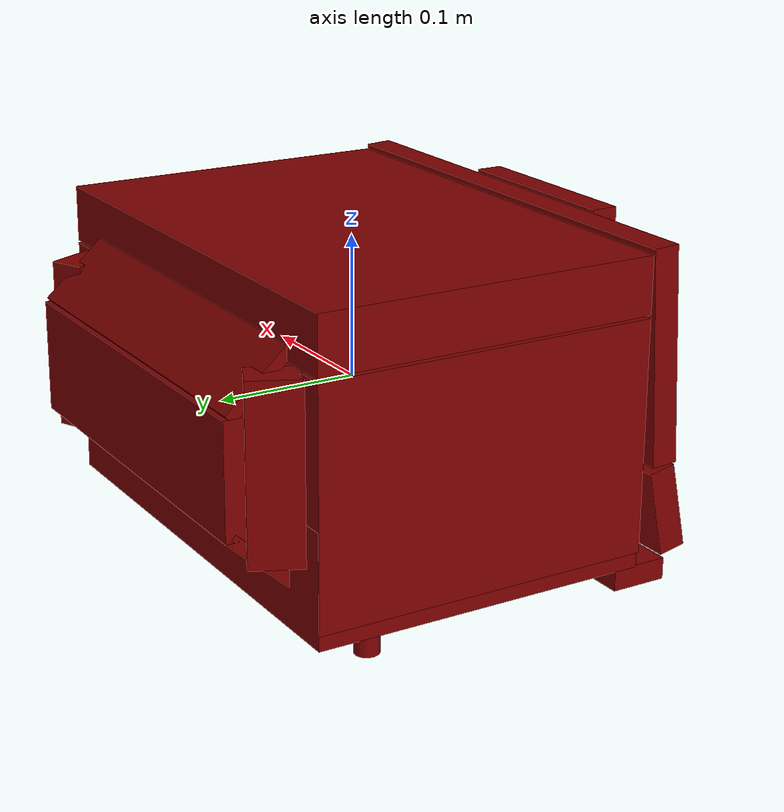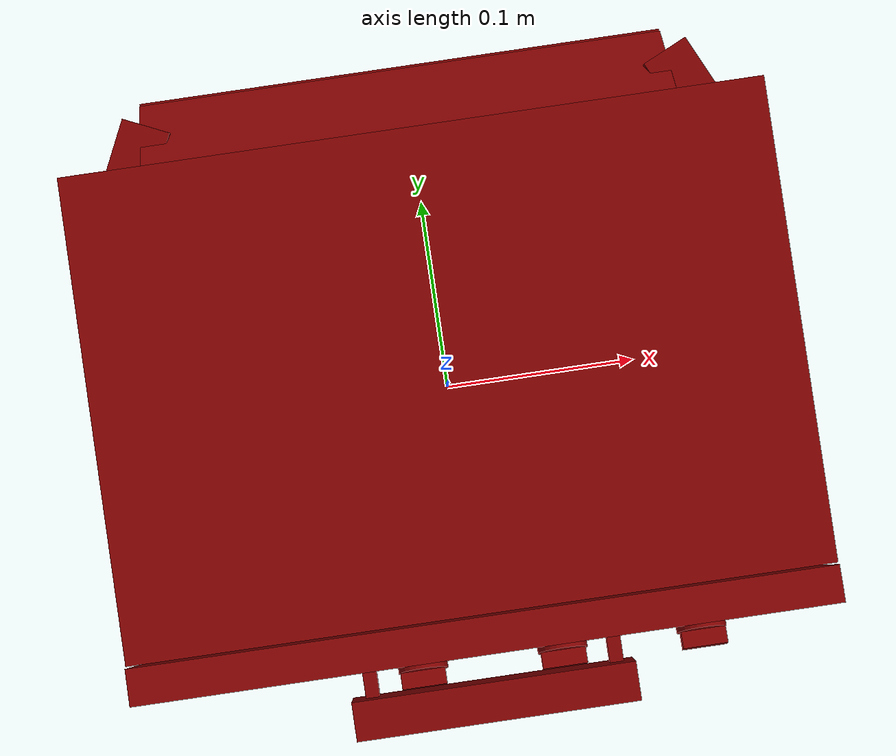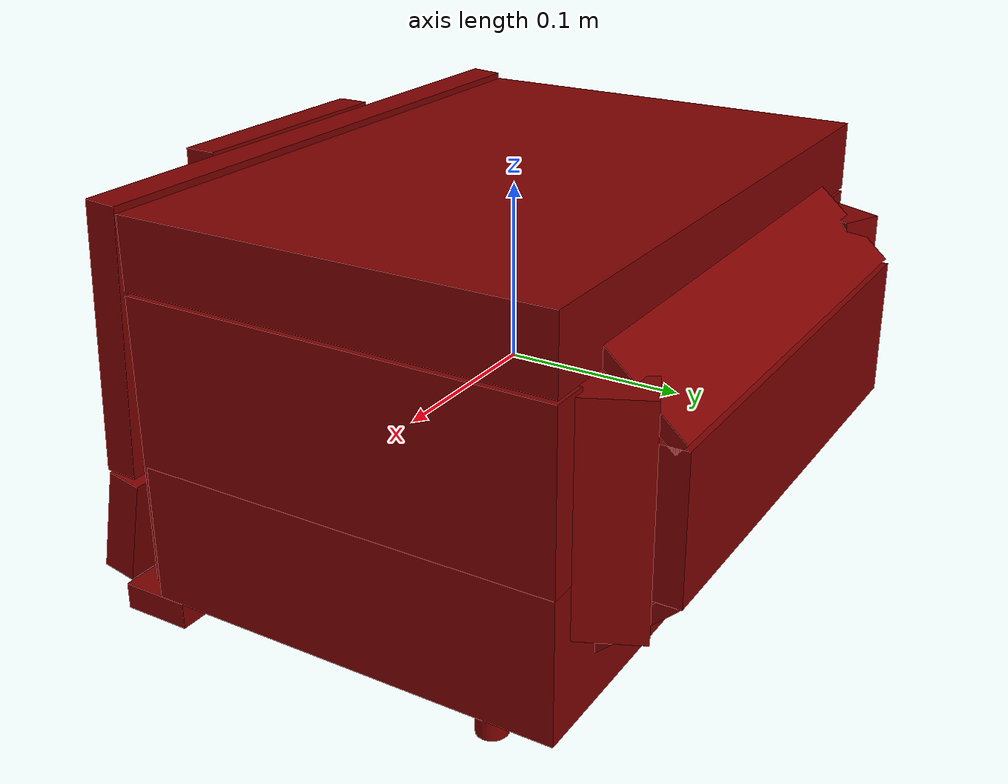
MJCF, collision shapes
<?xml version='1.0' encoding='UTF-8'?>
<mujoco model="model">
  <option timestep="0.002" gravity="0.0 0.0 -9.81"/>
  <compiler angle="radian"/>
  <asset>
    <mesh file="visuals/Body001.obj" name="Body001_vis"/>
    <mesh file="visuals/Door001.obj" name="Door001_vis"/>
    <mesh file="visuals/Door001_Clear.obj" name="Door001_Clear_vis"/>
    <mesh file="visuals/Knob001.obj" name="Knob001_vis"/>
    <mesh file="visuals/Knob002.obj" name="Knob002_vis"/>
    <mesh file="visuals/Knob003.obj" name="Knob003_vis"/>
    <mesh file="visuals/Shelf001.obj" name="Shelf001_vis"/>
    <texture file="visuals/T_BC001.png" name="Body001_material" type="2d"/>
    <material name="Body001_material" rgba="1 1 1 1.0" texture="Body001_material" shininess="0.1" specular="4"/>
    <texture file="visuals/T_BC001.png" name="Door001_material" type="2d"/>
    <material name="Door001_material" rgba="1 1 1 1.0" texture="Door001_material" shininess="0.1" specular="4"/>
    <material name="Door001_Clear_material" rgba="0.042244430631399155 0.042244430631399155 0.042244430631399155 0.800000011920929" shininess="0.4472135901451111" specular="0.3103448502657381"/>
    <texture file="visuals/T_BC001.png" name="Knob001_material" type="2d"/>
    <material name="Knob001_material" rgba="1 1 1 1.0" texture="Knob001_material" shininess="0.1" specular="4"/>
    <texture file="visuals/T_BC001.png" name="Knob002_material" type="2d"/>
    <material name="Knob002_material" rgba="1 1 1 1.0" texture="Knob002_material" shininess="0.1" specular="4"/>
    <texture file="visuals/T_BC001.png" name="Knob003_material" type="2d"/>
    <material name="Knob003_material" rgba="1 1 1 1.0" texture="Knob003_material" shininess="0.1" specular="4"/>
    <texture file="visuals/T_BC001.png" name="Shelf001_material" type="2d"/>
    <material name="Shelf001_material" rgba="1 1 1 1.0" texture="Shelf001_material" shininess="0.1" specular="4"/>
  </asset>
  <default>
    <default class="visual">
      <geom conaffinity="0" contype="0" group="1" type="mesh"/>
    </default>
    <default class="collision">
      <geom group="0" rgba="0.5 0 0 0.5"/>
    </default>
    <default class="spawn">
      <geom group="0" rgba="1 1 1 0.5" contype="0" conaffinity="0"/>
      <site group="0" rgba="1 1 1 0.5"/>
    </default>
    <default class="region">
      <geom group="1" conaffinity="0" contype="0" rgba="0 1 0 0"/>
    </default>
  </default>
  <worldbody>
    <body>
      <body name="object">
        <geom mesh="Body001_vis" type="mesh" solimp="0.998 0.998 0.001" solref="0.001 1" friction="0.95 0.3 0.1" class="visual" material="Body001_material"/>
        <geom class="collision" type="box" pos="0.000000 0.004546 0.091864" size="0.17422641813755035 0.11989676207304001 0.01969284750521183" quat="1.0 0.0 0.0 0.0" density="1000.0"/>
        <geom class="collision" type="box" pos="0.163726 0.004546 -0.009987" size="0.010500204749405384 0.11989676207304001 0.08027175068855286" quat="1.0 0.0 0.0 0.0" density="1000.0"/>
        <geom class="collision" type="box" pos="-0.163843 0.004546 -0.009987" size="0.010383167304098606 0.11989676207304001 0.08027175068855286" quat="1.0 0.0 0.0 0.0" density="1000.0"/>
        <geom class="collision" type="box" pos="0.000263 0.005302 -0.061783" size="0.17396342754364014 0.11914128065109253 0.03866548091173172" quat="1.0 0.0 0.0 0.0" density="1000.0"/>
        <geom class="collision" type="box" pos="0.000272 -0.137892 -0.065094" size="0.17397229373455048 0.009611217305064201 0.030262786895036697" quat="0.9950397610664368 -0.09947779029607773 -0.0 0.0" density="1000.0"/>
        <geom class="collision" type="box" pos="0.161902 -0.118960 -0.108072" size="0.012324108742177486 0.01985364407300949 0.007506381254643202" quat="1.0 0.0 0.0 0.0" density="1000.0"/>
        <geom class="collision" type="box" pos="-0.159173 -0.118960 -0.108072" size="0.012332997284829617 0.01985364407300949 0.007506381254643202" quat="1.0 0.0 0.0 0.0" density="1000.0"/>
        <geom class="collision" type="box" pos="-0.001060 0.141978 0.004006" size="0.13637468218803406 0.02494446374475956 0.03912200778722763" quat="1.0 0.0 0.0 0.0" density="1000.0"/>
        <geom class="collision" type="cylinder" pos="0.161109 0.084340 -0.107686" size="0.008421658538281918 0.007892950437963009" quat="1.0 0.0 0.0 0.0" density="1000.0"/>
        <geom class="collision" type="cylinder" pos="-0.162142 0.084340 -0.107686" size="0.008421658538281918 0.007892950437963009" quat="1.0 0.0 0.0 0.0" density="1000.0"/>
        <geom class="collision" type="box" pos="0.148023 0.006148 -0.004140" size="0.00678852666169405 0.11312280595302582 0.0031250836327672005" quat="1.0 0.0 0.0 0.0" density="1000.0"/>
        <geom class="collision" type="box" pos="-0.147589 0.006148 -0.004140" size="0.00678852666169405 0.11312280595302582 0.0031250836327672005" quat="1.0 0.0 0.0 0.0" density="1000.0"/>
        <geom class="collision" type="box" pos="-0.001060 0.141949 0.061155" size="0.13637468218803406 0.004142944701015949 0.02787165716290474" quat="0.9133381247520447 0.40720197558403015 0.0 0.0" density="1000.0"/>
        <geom class="collision" type="box" pos="-0.001060 0.141949 -0.051699" size="0.13637468218803406 0.004142944701015949 0.02787165716290474" quat="0.9133381247520447 -0.40720197558403015 -0.0 0.0" density="1000.0"/>
        <geom class="collision" type="box" pos="0.142465 0.131688 0.008094" size="0.012568509206175804 0.021317845210433006 0.05987899377942085" quat="0.9765339493751526 0.0 0.0 0.21536359190940857" density="1000.0"/>
        <geom class="collision" type="box" pos="-0.141918 0.131688 0.008094" size="0.012568509206175804 0.021317845210433006 0.05987899377942085" quat="0.9765339493751526 0.0 -0.0 -0.21536363661289215" density="1000.0"/>
        <geom class="collision" type="box" pos="0.000131 0.060555 0.048320" size="0.15465861558914185 0.06333073228597641 0.0027239753399044275" quat="0.9782559871673584 -0.2074011117219925 -0.0 0.0" density="1000.0"/>
        <body name="Door001">
          <joint axis="1.0 0.0 0.0" pos="0.000002 -0.139345 -0.031522" limited="true" name="Door001_joint" range="0.0 1.5707963267948966" type="hinge" damping="1" frictionloss="1" armature=".01" stiffness="0.05"/>
          <geom mesh="Door001_vis" type="mesh" solimp="0.998 0.998 0.001" solref="0.001 1" friction="0.95 0.3 0.1" class="visual" material="Door001_material"/>
          <geom class="collision" type="box" pos="-0.000000 -0.129236 0.041516" size="0.17422643303871155 0.009200799278914928 0.0740710124373436" quat="0.9996618032455444 -0.026004673913121223 -5.77419754524327e-18 8.953580148943668e-25" density="1000.0"/>
          <geom class="collision" type="box" pos="0.000836 -0.157741 0.101386" size="0.0694253221154213 0.009549472481012344 0.011218705214560032" quat="1.0 0.0 0.0 0.0" density="1000.0"/>
          <geom class="collision" type="box" pos="0.061553 -0.141602 0.101697" size="0.003388055134564638 0.006360279396176338 0.0032590227201581" quat="1.0 0.0 0.0 0.0" density="1000.0"/>
          <geom class="collision" type="box" pos="-0.058384 -0.141602 0.101697" size="0.003388055134564638 0.006360279396176338 0.0032590227201581" quat="1.0 0.0 0.0 0.0" density="1000.0"/>
          <body name="Door001_Clear">
            <geom mesh="Door001_Clear_vis" type="mesh" solimp="0.998 0.998 0.001" solref="0.001 1" friction="0.95 0.3 0.1" class="visual" material="Door001_Clear_material"/>
            <geom class="collision" type="box" pos="0.000113 -0.133884 0.031656" size="0.12217236310243607 0.002058350248262286 0.033491116017103195" quat="0.9996618032455444 -0.026004673913121223 -5.77419754524327e-18 8.953580148943668e-25" density="1000.0"/>
          </body>
        </body>
        <body name="Knob001">
          <joint axis="0.0 0.9809496402740479 -0.19426217675209045" pos="-0.036715 -0.155623 -0.062342" limited="true" name="Knob001_joint" range="0.0 4.747295565424576" type="hinge" damping="0.05" armature="0.001" springref="-0.01"/>
          <geom mesh="Knob001_vis" type="mesh" solimp="0.998 0.998 0.001" solref="0.001 1" friction="0.95 0.3 0.1" class="visual" material="Knob001_material"/>
          <geom class="collision" type="cylinder" pos="-0.036536 -0.151391 -0.063074" size="0.013990923762321472 0.0029015822801738977" quat="0.7717979550361633 0.6358678340911865 0.0 0.0" density="1000.0"/>
          <geom class="collision" type="box" pos="-0.036955 -0.158551 -0.062365" size="0.004592180252075195 0.0049474104307591915 0.012629842385649681" quat="0.7040730714797974 -0.06543001532554626 0.7040731310844421 -0.06543001532554626" density="1000.0"/>
        </body>
        <body name="Knob002">
          <joint axis="0.0 0.9809496402740479 -0.19426217675209045" pos="0.042452 -0.155364 -0.061036" limited="true" name="Knob002_joint" range="0.0 4.747295565424576" type="hinge" damping="0.05" armature="0.001" springref="-0.01"/>
          <geom mesh="Knob002_vis" type="mesh" solimp="0.998 0.998 0.001" solref="0.001 1" friction="0.95 0.3 0.1" class="visual" material="Knob002_material"/>
          <geom class="collision" type="box" pos="0.042688 -0.158429 -0.060607" size="0.004592180252075195 0.00482372660189867 0.012629842385649681" quat="0.7040730714797974 -0.06543001532554626 0.7040731310844421 -0.06543001532554626" density="1000.0"/>
          <geom class="collision" type="cylinder" pos="0.042607 -0.151270 -0.062027" size="0.014042610302567482 0.0029085823334753513" quat="0.7717979550361633 0.6358678340911865 0.0 0.0" density="1000.0"/>
        </body>
        <body name="Knob003">
          <joint axis="0.0 0.9809496402740479 -0.19426217675209045" pos="0.121349 -0.155287 -0.060644" limited="true" name="Knob003_joint" range="0.0 4.71238898038469" type="hinge" damping="0.05" armature="0.001" springref="-0.01"/>
          <geom mesh="Knob003_vis" type="mesh" solimp="0.998 0.998 0.001" solref="0.001 1" friction="0.95 0.3 0.1" class="visual" material="Knob003_material"/>
          <geom class="collision" type="cylinder" pos="0.121562 -0.151131 -0.061631" size="0.014112585224211216 0.002918058540672064" quat="0.7717979550361633 0.6358678340911865 0.0 0.0" density="1000.0"/>
          <geom class="collision" type="box" pos="0.122077 -0.158508 -0.060592" size="0.004592180252075195 0.004903800319880247 0.012629842385649681" quat="0.7040730714797974 -0.06543001532554626 0.7040731310844421 -0.06543001532554626" density="1000.0"/>
        </body>
        <body name="Shelf001">
          <joint axis="0.0 -1.0 0.0" pos="0.001006 -0.029013 0.007760" limited="true" name="Shelf001_joint" range="0.0 0.15" type="slide" damping="1" frictionloss="1" armature=".01" stiffness="0.05"/>
          <geom mesh="Shelf001_vis" type="mesh" solimp="0.998 0.998 0.001" solref="0.001 1" friction="0.95 0.3 0.1" class="visual" material="Shelf001_material"/>
          <geom class="collision" type="box" pos="0.001033 -0.028745 0.004138" size="0.1484881490468979 0.08274929970502853 0.004447105340659618" quat="1.0 0.0 0.0 0.0" density="1000.0"/>
        </body>
        <geom class="region" name="reg_int" type="box" pos="-0.00021100000000000285 -0.0034035000000000037 0.0280645" size="0.15397100000000002 0.1197525 0.057667500000000003"/>
        <geom class="region" name="reg_main" type="box" pos="0.0 0.013923999999999992 1.1999999999998123e-05" size="0.174226 0.152998 0.11559"/>
      </body>
    </body>
  </worldbody>
  <actuator>
    <motor name="Door001_joint_actuator" joint="Door001_joint" gear="50"/>
    <motor name="Knob001_joint_actuator" joint="Knob001_joint" gear="50"/>
    <motor name="Knob002_joint_actuator" joint="Knob002_joint" gear="50"/>
    <motor name="Knob003_joint_actuator" joint="Knob003_joint" gear="50"/>
    <motor name="Shelf001_joint_actuator" joint="Shelf001_joint" gear="50"/>
  </actuator>
</mujoco>
